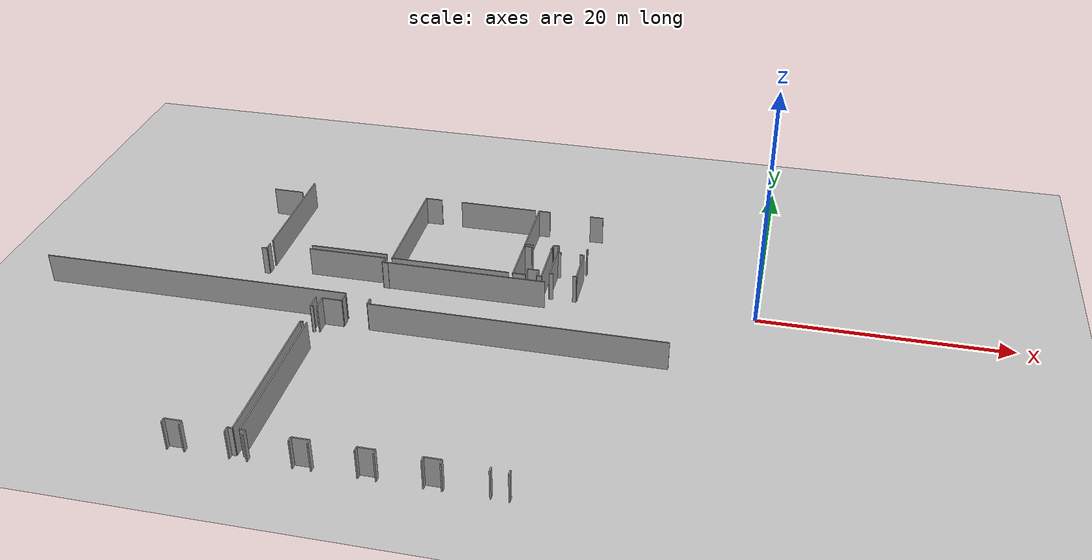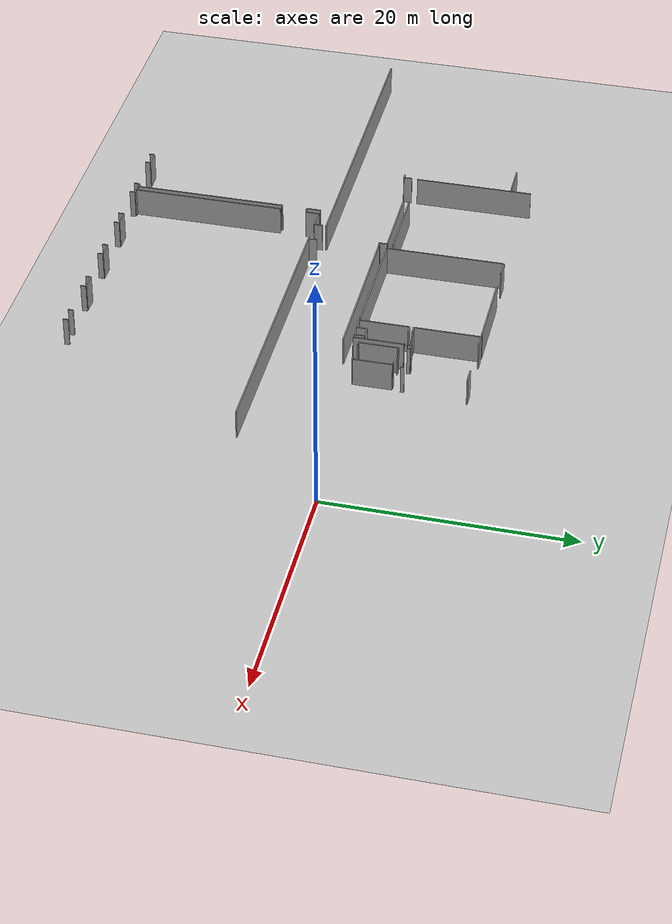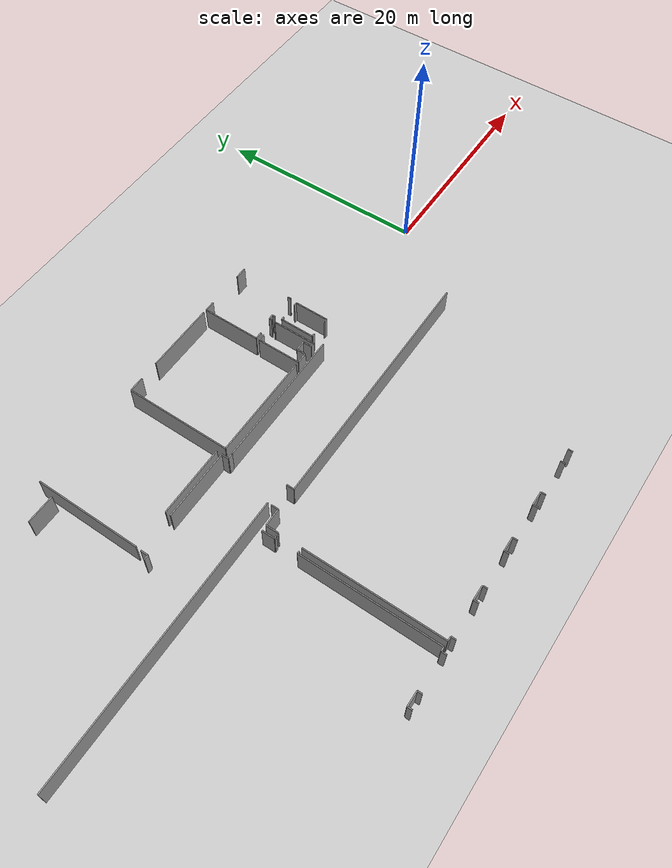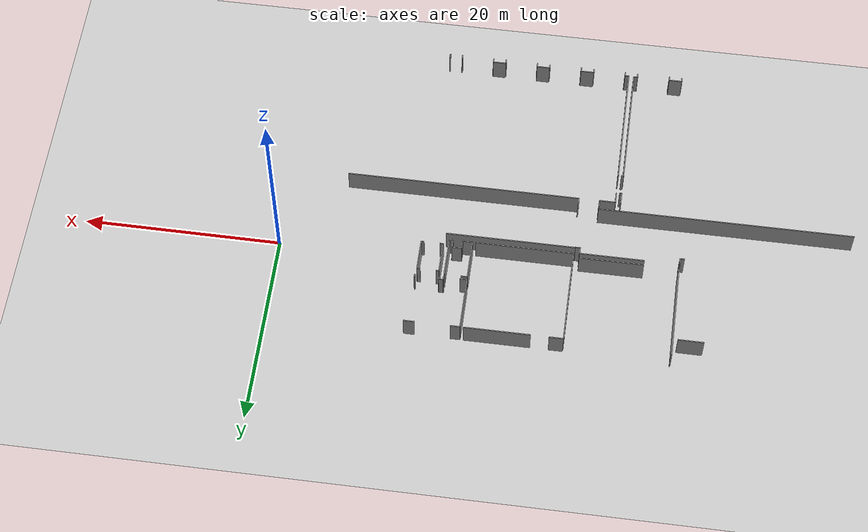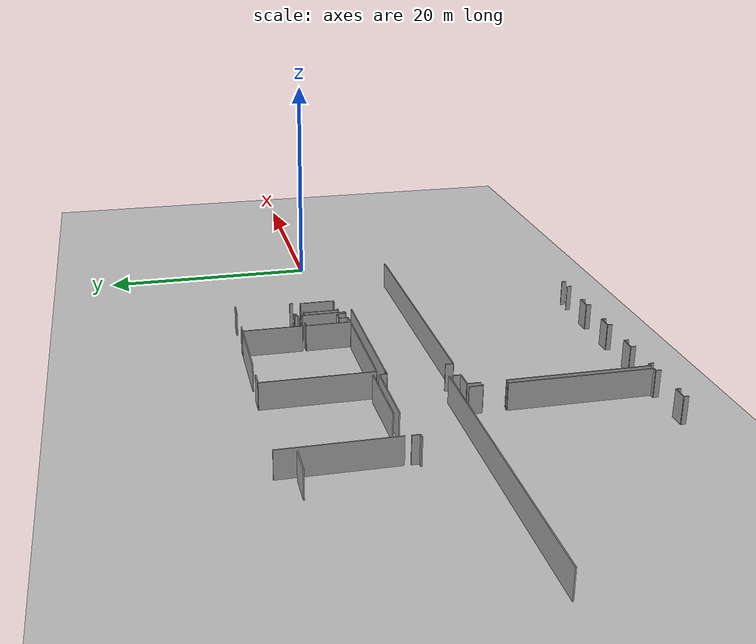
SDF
<sdf version="1.6">
 <world name="default">
  <model name="ground_plane">
   <static>1</static>
   <link name="link">
    <collision name="collision">
     <geometry><plane><normal>0 0 1</normal><size>100 100</size></plane></geometry>
     <surface><friction><ode><mu>100</mu><mu2>50</mu2></ode></friction></surface>
    </collision>
    <visual name="visual">
     <cast_shadows>0</cast_shadows>
     <geometry><plane><normal>0 0 1</normal><size>100 100</size></plane></geometry>
     <material>
      <script><uri>file://media/materials/scripts/gazebo.material</uri><name>Gazebo/Grey</name></script>
     </material>
    </visual>
   </link>
  </model>
  <model name="0510032197_A_40_1_105">
   <static>1</static>
   <link name="Wall_288">
    <collision name="Wall_288_Collision">
     <geometry><box><size>3.20733613798 0.1 2.5</size></box></geometry>
     <pose>1.60366806899 0 1.25 0 0 0</pose>
    </collision>
    <visual name="Wall_288_Visual">
     <pose>1.60366806899 0 1.25 0 0 0</pose>
     <geometry><box><size>3.20733613798 0.1 2.5</size></box></geometry>
     <material>
      <script><uri>file://media/materials/scripts/gazebo.material</uri><name>Gazebo/Grey</name></script>
      <ambient>1 1 1 1</ambient>
     </material>
    </visual>
    <pose>48.8543321598 -24.7133288425 0 0 0 1.57079632679</pose>
   </link>
   <link name="Wall_289">
    <collision name="Wall_289_Collision">
     <geometry><box><size>0.297665196558 0.1 2.5</size></box></geometry>
     <pose>0.148832598279 0 1.25 0 0 0</pose>
    </collision>
    <visual name="Wall_289_Visual">
     <pose>0.148832598279 0 1.25 0 0 0</pose>
     <geometry><box><size>0.297665196558 0.1 2.5</size></box></geometry>
     <material>
      <script><uri>file://media/materials/scripts/gazebo.material</uri><name>Gazebo/Grey</name></script>
      <ambient>1 1 1 1</ambient>
     </material>
    </visual>
    <pose>48.8543321598 -21.5059927045 0 0 0 0.0</pose>
   </link>
   <link name="Wall_290">
    <collision name="Wall_290_Collision">
     <geometry><box><size>0.335921910548 0.1 2.5</size></box></geometry>
     <pose>0.167960955274 0 1.25 0 0 0</pose>
    </collision>
    <visual name="Wall_290_Visual">
     <pose>0.167960955274 0 1.25 0 0 0</pose>
     <geometry><box><size>0.335921910548 0.1 2.5</size></box></geometry>
     <material>
      <script><uri>file://media/materials/scripts/gazebo.material</uri><name>Gazebo/Grey</name></script>
      <ambient>1 1 1 1</ambient>
     </material>
    </visual>
    <pose>50.7247168876 -21.5059927045 0 0 0 0.0</pose>
   </link>
   <link name="Wall_291">
    <collision name="Wall_291_Collision">
     <geometry><box><size>3.20682774311 0.1 2.5</size></box></geometry>
     <pose>1.60341387155 0 1.25 0 0 0</pose>
    </collision>
    <visual name="Wall_291_Visual">
     <pose>1.60341387155 0 1.25 0 0 0</pose>
     <geometry><box><size>3.20682774311 0.1 2.5</size></box></geometry>
     <material>
      <script><uri>file://media/materials/scripts/gazebo.material</uri><name>Gazebo/Grey</name></script>
      <ambient>1 1 1 1</ambient>
     </material>
    </visual>
    <pose>51.0606387982 -21.5059927045 0 0 0 -1.57079632679</pose>
   </link>
   <link name="Wall_292">
    <collision name="Wall_292_Collision">
     <geometry><box><size>0.296267110665 0.1 2.5</size></box></geometry>
     <pose>0.148133555332 0 1.25 0 0 0</pose>
    </collision>
    <visual name="Wall_292_Visual">
     <pose>0.148133555332 0 1.25 0 0 0</pose>
     <geometry><box><size>0.296267110665 0.1 2.5</size></box></geometry>
     <material>
      <script><uri>file://media/materials/scripts/gazebo.material</uri><name>Gazebo/Grey</name></script>
      <ambient>1 1 1 1</ambient>
     </material>
    </visual>
    <pose>51.0606387982 -24.7128204476 0 0 0 3.14159265359</pose>
   </link>
   <link name="Wall_293">
    <collision name="Wall_293_Collision">
     <geometry><box><size>0.30592703563 0.1 2.5</size></box></geometry>
     <pose>0.152963517815 0 1.25 0 0 0</pose>
    </collision>
    <visual name="Wall_293_Visual">
     <pose>0.152963517815 0 1.25 0 0 0</pose>
     <geometry><box><size>0.30592703563 0.1 2.5</size></box></geometry>
     <material>
      <script><uri>file://media/materials/scripts/gazebo.material</uri><name>Gazebo/Grey</name></script>
      <ambient>1 1 1 1</ambient>
     </material>
    </visual>
    <pose>49.160258773 -24.7128204476 0 0 0 -3.13993083543</pose>
   </link>
   <link name="Wall_294">
    <collision name="Wall_294_Collision">
     <geometry><box><size>5.43804573012 0.1 2.5</size></box></geometry>
     <pose>2.71902286506 0 1.25 0 0 0</pose>
    </collision>
    <visual name="Wall_294_Visual">
     <pose>2.71902286506 0 1.25 0 0 0</pose>
     <geometry><box><size>5.43804573012 0.1 2.5</size></box></geometry>
     <material>
      <script><uri>file://media/materials/scripts/gazebo.material</uri><name>Gazebo/Grey</name></script>
      <ambient>1 1 1 1</ambient>
     </material>
    </visual>
    <pose>45.9634718286 -20.8638899834 0 0 0 1.57079632679</pose>
   </link>
   <link name="Wall_295">
    <collision name="Wall_295_Collision">
     <geometry><box><size>0.963662476646 0.1 2.5</size></box></geometry>
     <pose>0.481831238323 0 1.25 0 0 0</pose>
    </collision>
    <visual name="Wall_295_Visual">
     <pose>0.481831238323 0 1.25 0 0 0</pose>
     <geometry><box><size>0.963662476646 0.1 2.5</size></box></geometry>
     <material>
      <script><uri>file://media/materials/scripts/gazebo.material</uri><name>Gazebo/Grey</name></script>
      <ambient>1 1 1 1</ambient>
     </material>
    </visual>
    <pose>45.9634718286 -15.4258442532 0 0 0 0.0</pose>
   </link>
   <link name="Wall_296">
    <collision name="Wall_296_Collision">
     <geometry><box><size>1.10906340955 0.1 2.5</size></box></geometry>
     <pose>0.554531704775 0 1.25 0 0 0</pose>
    </collision>
    <visual name="Wall_296_Visual">
     <pose>0.554531704775 0 1.25 0 0 0</pose>
     <geometry><box><size>1.10906340955 0.1 2.5</size></box></geometry>
     <material>
      <script><uri>file://media/materials/scripts/gazebo.material</uri><name>Gazebo/Grey</name></script>
      <ambient>1 1 1 1</ambient>
     </material>
    </visual>
    <pose>50.4772556845 -15.4258442532 0 0 0 0.0</pose>
   </link>
   <link name="Wall_300">
    <collision name="Wall_300_Collision">
     <geometry><box><size>0.286734706847 0.1 2.5</size></box></geometry>
     <pose>0.143367353423 0 1.25 0 0 0</pose>
    </collision>
    <visual name="Wall_300_Visual">
     <pose>0.143367353423 0 1.25 0 0 0</pose>
     <geometry><box><size>0.286734706847 0.1 2.5</size></box></geometry>
     <material>
      <script><uri>file://media/materials/scripts/gazebo.material</uri><name>Gazebo/Grey</name></script>
      <ambient>1 1 1 1</ambient>
     </material>
    </visual>
    <pose>51.1794760991 -20.5212318408 0 0 0 -1.57079632679</pose>
   </link>
   <link name="Wall_301">
    <collision name="Wall_301_Collision">
     <geometry><box><size>0.0167770307198 0.1 2.5</size></box></geometry>
     <pose>0.00838851535988 0 1.25 0 0 0</pose>
    </collision>
    <visual name="Wall_301_Visual">
     <pose>0.00838851535988 0 1.25 0 0 0</pose>
     <geometry><box><size>0.0167770307198 0.1 2.5</size></box></geometry>
     <material>
      <script><uri>file://media/materials/scripts/gazebo.material</uri><name>Gazebo/Grey</name></script>
      <ambient>1 1 1 1</ambient>
     </material>
    </visual>
    <pose>51.1794760991 -20.8079665476 0 0 0 -1.57079632679</pose>
   </link>
   <link name="Wall_302">
    <collision name="Wall_302_Collision">
     <geometry><box><size>0.27135576202 0.1 2.5</size></box></geometry>
     <pose>0.13567788101 0 1.25 0 0 0</pose>
    </collision>
    <visual name="Wall_302_Visual">
     <pose>0.13567788101 0 1.25 0 0 0</pose>
     <geometry><box><size>0.27135576202 0.1 2.5</size></box></geometry>
     <material>
      <script><uri>file://media/materials/scripts/gazebo.material</uri><name>Gazebo/Grey</name></script>
      <ambient>1 1 1 1</ambient>
     </material>
    </visual>
    <pose>48.7630752806 -20.8247435783 0 0 0 1.57079632679</pose>
   </link>
   <link name="Wall_303">
    <collision name="Wall_303_Collision">
     <geometry><box><size>0.450437855082 0.1 2.5</size></box></geometry>
     <pose>0.225218927541 0 1.25 0 0 0</pose>
    </collision>
    <visual name="Wall_303_Visual">
     <pose>0.225218927541 0 1.25 0 0 0</pose>
     <geometry><box><size>0.450437855082 0.1 2.5</size></box></geometry>
     <material>
      <script><uri>file://media/materials/scripts/gazebo.material</uri><name>Gazebo/Grey</name></script>
      <ambient>1 1 1 1</ambient>
     </material>
    </visual>
    <pose>48.7630752806 -20.5533878163 0 0 0 3.14159265359</pose>
   </link>
   <link name="Wall_304">
    <collision name="Wall_304_Collision">
     <geometry><box><size>0.30859568627 0.1 2.5</size></box></geometry>
     <pose>0.154297843135 0 1.25 0 0 0</pose>
    </collision>
    <visual name="Wall_304_Visual">
     <pose>0.154297843135 0 1.25 0 0 0</pose>
     <geometry><box><size>0.30859568627 0.1 2.5</size></box></geometry>
     <material>
      <script><uri>file://media/materials/scripts/gazebo.material</uri><name>Gazebo/Grey</name></script>
      <ambient>1 1 1 1</ambient>
     </material>
    </visual>
    <pose>48.3126374255 -20.5533878163 0 0 0 -1.57079632679</pose>
   </link>
   <link name="Wall_305">
    <collision name="Wall_305_Collision">
     <geometry><box><size>0.0540169549689 0.1 2.5</size></box></geometry>
     <pose>0.0270084774845 0 1.25 0 0 0</pose>
    </collision>
    <visual name="Wall_305_Visual">
     <pose>0.0270084774845 0 1.25 0 0 0</pose>
     <geometry><box><size>0.0540169549689 0.1 2.5</size></box></geometry>
     <material>
      <script><uri>file://media/materials/scripts/gazebo.material</uri><name>Gazebo/Grey</name></script>
      <ambient>1 1 1 1</ambient>
     </material>
    </visual>
    <pose>48.3126374255 -20.8619835026 0 0 0 3.14159265359</pose>
   </link>
   <link name="Wall_306">
    <collision name="Wall_306_Collision">
     <geometry><box><size>0.714678631792 0.1 2.5</size></box></geometry>
     <pose>0.357339315896 0 1.25 0 0 0</pose>
    </collision>
    <visual name="Wall_306_Visual">
     <pose>0.357339315896 0 1.25 0 0 0</pose>
     <geometry><box><size>0.714678631792 0.1 2.5</size></box></geometry>
     <material>
      <script><uri>file://media/materials/scripts/gazebo.material</uri><name>Gazebo/Grey</name></script>
      <ambient>1 1 1 1</ambient>
     </material>
    </visual>
    <pose>46.6781479175 -20.8619835026 0 0 0 -3.13892504477</pose>
   </link>
   <link name="Wall_307">
    <collision name="Wall_307_Collision">
     <geometry><box><size>4.10579697251 0.1 2.5</size></box></geometry>
     <pose>2.05289848625 0 1.25 0 0 0</pose>
    </collision>
    <visual name="Wall_307_Visual">
     <pose>2.05289848625 0 1.25 0 0 0</pose>
     <geometry><box><size>4.10579697251 0.1 2.5</size></box></geometry>
     <material>
      <script><uri>file://media/materials/scripts/gazebo.material</uri><name>Gazebo/Grey</name></script>
      <ambient>1 1 1 1</ambient>
     </material>
    </visual>
    <pose>45.9643615196 -25.2888318357 0 0 0 1.57079632679</pose>
   </link>
   <link name="Wall_308">
    <collision name="Wall_308_Collision">
     <geometry><box><size>0.646678275016 0.1 2.5</size></box></geometry>
     <pose>0.323339137508 0 1.25 0 0 0</pose>
    </collision>
    <visual name="Wall_308_Visual">
     <pose>0.323339137508 0 1.25 0 0 0</pose>
     <geometry><box><size>0.646678275016 0.1 2.5</size></box></geometry>
     <material>
      <script><uri>file://media/materials/scripts/gazebo.material</uri><name>Gazebo/Grey</name></script>
      <ambient>1 1 1 1</ambient>
     </material>
    </visual>
    <pose>45.9643615196 -21.1830348632 0 0 0 0.0</pose>
   </link>
   <link name="Wall_309">
    <collision name="Wall_309_Collision">
     <geometry><box><size>0.104348047128 0.1 2.5</size></box></geometry>
     <pose>0.0521740235641 0 1.25 0 0 0</pose>
    </collision>
    <visual name="Wall_309_Visual">
     <pose>0.0521740235641 0 1.25 0 0 0</pose>
     <geometry><box><size>0.104348047128 0.1 2.5</size></box></geometry>
     <material>
      <script><uri>file://media/materials/scripts/gazebo.material</uri><name>Gazebo/Grey</name></script>
      <ambient>1 1 1 1</ambient>
     </material>
    </visual>
    <pose>48.1833780297 -21.1830348632 0 0 0 0.0</pose>
   </link>
   <link name="Wall_310">
    <collision name="Wall_310_Collision">
     <geometry><box><size>4.07478488542 0.1 2.5</size></box></geometry>
     <pose>2.03739244271 0 1.25 0 0 0</pose>
    </collision>
    <visual name="Wall_310_Visual">
     <pose>2.03739244271 0 1.25 0 0 0</pose>
     <geometry><box><size>4.07478488542 0.1 2.5</size></box></geometry>
     <material>
      <script><uri>file://media/materials/scripts/gazebo.material</uri><name>Gazebo/Grey</name></script>
      <ambient>1 1 1 1</ambient>
     </material>
    </visual>
    <pose>48.2877260768 -21.1830348632 0 0 0 -1.57079632679</pose>
   </link>
   <link name="Wall_311">
    <collision name="Wall_311_Collision">
     <geometry><box><size>0.369730169423 0.1 2.5</size></box></geometry>
     <pose>0.184865084711 0 1.25 0 0 0</pose>
    </collision>
    <visual name="Wall_311_Visual">
     <pose>0.184865084711 0 1.25 0 0 0</pose>
     <geometry><box><size>0.369730169423 0.1 2.5</size></box></geometry>
     <material>
      <script><uri>file://media/materials/scripts/gazebo.material</uri><name>Gazebo/Grey</name></script>
      <ambient>1 1 1 1</ambient>
     </material>
    </visual>
    <pose>48.2877260768 -25.2578197486 0 0 0 3.14159265359</pose>
   </link>
   <link name="Wall_312">
    <collision name="Wall_312_Collision">
     <geometry><box><size>0.814448582214 0.1 2.5</size></box></geometry>
     <pose>0.407224291107 0 1.25 0 0 0</pose>
    </collision>
    <visual name="Wall_312_Visual">
     <pose>0.407224291107 0 1.25 0 0 0</pose>
     <geometry><box><size>0.814448582214 0.1 2.5</size></box></geometry>
     <material>
      <script><uri>file://media/materials/scripts/gazebo.material</uri><name>Gazebo/Grey</name></script>
      <ambient>1 1 1 1</ambient>
     </material>
    </visual>
    <pose>47.9179959074 -25.2578197486 0 0 0 1.57079632679</pose>
   </link>
   <link name="Wall_313">
    <collision name="Wall_313_Collision">
     <geometry><box><size>0.947393840796 0.1 2.5</size></box></geometry>
     <pose>0.473696920398 0 1.25 0 0 0</pose>
    </collision>
    <visual name="Wall_313_Visual">
     <pose>0.473696920398 0 1.25 0 0 0</pose>
     <geometry><box><size>0.947393840796 0.1 2.5</size></box></geometry>
     <material>
      <script><uri>file://media/materials/scripts/gazebo.material</uri><name>Gazebo/Grey</name></script>
      <ambient>1 1 1 1</ambient>
     </material>
    </visual>
    <pose>47.9179959074 -24.4433711664 0 0 0 3.14159265359</pose>
   </link>
   <link name="Wall_314">
    <collision name="Wall_314_Collision">
     <geometry><box><size>0.835165673178 0.1 2.5</size></box></geometry>
     <pose>0.417582836589 0 1.25 0 0 0</pose>
    </collision>
    <visual name="Wall_314_Visual">
     <pose>0.417582836589 0 1.25 0 0 0</pose>
     <geometry><box><size>0.835165673178 0.1 2.5</size></box></geometry>
     <material>
      <script><uri>file://media/materials/scripts/gazebo.material</uri><name>Gazebo/Grey</name></script>
      <ambient>1 1 1 1</ambient>
     </material>
    </visual>
    <pose>46.9706020666 -24.4433711664 0 0 0 -1.57079632679</pose>
   </link>
   <link name="Wall_315">
    <collision name="Wall_315_Collision">
     <geometry><box><size>1.00629321047 0.1 2.5</size></box></geometry>
     <pose>0.503146605235 0 1.25 0 0 0</pose>
    </collision>
    <visual name="Wall_315_Visual">
     <pose>0.503146605235 0 1.25 0 0 0</pose>
     <geometry><box><size>1.00629321047 0.1 2.5</size></box></geometry>
     <material>
      <script><uri>file://media/materials/scripts/gazebo.material</uri><name>Gazebo/Grey</name></script>
      <ambient>1 1 1 1</ambient>
     </material>
    </visual>
    <pose>46.9706020666 -25.2785368396 0 0 0 -3.13136186239</pose>
   </link>
   <link name="Wall_316">
    <collision name="Wall_316_Collision">
     <geometry><box><size>9.85078610557 0.1 2.5</size></box></geometry>
     <pose>4.92539305278 0 1.25 0 0 0</pose>
    </collision>
    <visual name="Wall_316_Visual">
     <pose>4.92539305278 0 1.25 0 0 0</pose>
     <geometry><box><size>9.85078610557 0.1 2.5</size></box></geometry>
     <material>
      <script><uri>file://media/materials/scripts/gazebo.material</uri><name>Gazebo/Grey</name></script>
      <ambient>1 1 1 1</ambient>
     </material>
    </visual>
    <pose>35.7936679419 -25.2669708563 0 0 0 1.57079632679</pose>
   </link>
   <link name="Wall_317">
    <collision name="Wall_317_Collision">
     <geometry><box><size>1.42236174837 0.1 2.5</size></box></geometry>
     <pose>0.711180874185 0 1.25 0 0 0</pose>
    </collision>
    <visual name="Wall_317_Visual">
     <pose>0.711180874185 0 1.25 0 0 0</pose>
     <geometry><box><size>1.42236174837 0.1 2.5</size></box></geometry>
     <material>
      <script><uri>file://media/materials/scripts/gazebo.material</uri><name>Gazebo/Grey</name></script>
      <ambient>1 1 1 1</ambient>
     </material>
    </visual>
    <pose>35.7936679419 -15.4161847507 0 0 0 0.0</pose>
   </link>
   <link name="Wall_318">
    <collision name="Wall_318_Collision">
     <geometry><box><size>6.59705893568 0.1 2.5</size></box></geometry>
     <pose>3.29852946784 0 1.25 0 0 0</pose>
    </collision>
    <visual name="Wall_318_Visual">
     <pose>3.29852946784 0 1.25 0 0 0</pose>
     <geometry><box><size>6.59705893568 0.1 2.5</size></box></geometry>
     <material>
      <script><uri>file://media/materials/scripts/gazebo.material</uri><name>Gazebo/Grey</name></script>
      <ambient>1 1 1 1</ambient>
     </material>
    </visual>
    <pose>39.0257883298 -15.4161847507 0 0 0 0.0</pose>
   </link>
   <link name="Wall_320">
    <collision name="Wall_320_Collision">
     <geometry><box><size>9.8291901911 0.1 2.5</size></box></geometry>
     <pose>4.91459509555 0 1.25 0 0 0</pose>
    </collision>
    <visual name="Wall_320_Visual">
     <pose>4.91459509555 0 1.25 0 0 0</pose>
     <geometry><box><size>9.8291901911 0.1 2.5</size></box></geometry>
     <material>
      <script><uri>file://media/materials/scripts/gazebo.material</uri><name>Gazebo/Grey</name></script>
      <ambient>1 1 1 1</ambient>
     </material>
    </visual>
    <pose>45.6228472655 -25.2815872088 0 0 0 3.14010561777</pose>
   </link>
   <link name="Wall_321">
    <collision name="Wall_321_Collision">
     <geometry><box><size>9.83299228511 0.1 2.5</size></box></geometry>
     <pose>4.91649614255 0 1.25 0 0 0</pose>
    </collision>
    <visual name="Wall_321_Visual">
     <pose>4.91649614255 0 1.25 0 0 0</pose>
     <geometry><box><size>9.83299228511 0.1 2.5</size></box></geometry>
     <material>
      <script><uri>file://media/materials/scripts/gazebo.material</uri><name>Gazebo/Grey</name></script>
      <ambient>1 1 1 1</ambient>
     </material>
    </visual>
    <pose>25.2207069231 -24.8537729254 0 0 0 1.57079632679</pose>
   </link>
   <link name="Wall_325">
    <collision name="Wall_325_Collision">
     <geometry><box><size>6.49121407537 0.1 2.5</size></box></geometry>
     <pose>3.24560703768 0 1.25 0 0 0</pose>
    </collision>
    <visual name="Wall_325_Visual">
     <pose>3.24560703768 0 1.25 0 0 0</pose>
     <geometry><box><size>6.49121407537 0.1 2.5</size></box></geometry>
     <material>
      <script><uri>file://media/materials/scripts/gazebo.material</uri><name>Gazebo/Grey</name></script>
      <ambient>1 1 1 1</ambient>
     </material>
    </visual>
    <pose>35.2020234116 -24.8345810191 0 0 0 -3.13863605193</pose>
   </link>
   <link name="Wall_341">
    <collision name="Wall_341_Collision">
     <geometry><box><size>1.1810012837 0.1 2.5</size></box></geometry>
     <pose>0.590500641849 0 1.25 0 0 0</pose>
    </collision>
    <visual name="Wall_341_Visual">
     <pose>0.590500641849 0 1.25 0 0 0</pose>
     <geometry><box><size>1.1810012837 0.1 2.5</size></box></geometry>
     <material>
      <script><uri>file://media/materials/scripts/gazebo.material</uri><name>Gazebo/Grey</name></script>
      <ambient>1 1 1 1</ambient>
     </material>
    </visual>
    <pose>31.6484703669 -31.8834758957 0 0 0 -1.57079632679</pose>
   </link>
   <link name="Wall_342">
    <collision name="Wall_342_Collision">
     <geometry><box><size>0.225346026259 0.1 2.5</size></box></geometry>
     <pose>0.112673013129 0 1.25 0 0 0</pose>
    </collision>
    <visual name="Wall_342_Visual">
     <pose>0.112673013129 0 1.25 0 0 0</pose>
     <geometry><box><size>0.225346026259 0.1 2.5</size></box></geometry>
     <material>
      <script><uri>file://media/materials/scripts/gazebo.material</uri><name>Gazebo/Grey</name></script>
      <ambient>1 1 1 1</ambient>
     </material>
    </visual>
    <pose>31.6484703669 -33.0644771794 0 0 0 0.0</pose>
   </link>
   <link name="Wall_343">
    <collision name="Wall_343_Collision">
     <geometry><box><size>0.225346026259 0.1 2.5</size></box></geometry>
     <pose>0.112673013129 0 1.25 0 0 0</pose>
    </collision>
    <visual name="Wall_343_Visual">
     <pose>0.112673013129 0 1.25 0 0 0</pose>
     <geometry><box><size>0.225346026259 0.1 2.5</size></box></geometry>
     <material>
      <script><uri>file://media/materials/scripts/gazebo.material</uri><name>Gazebo/Grey</name></script>
      <ambient>1 1 1 1</ambient>
     </material>
    </visual>
    <pose>31.8738163932 -35.2010066218 0 0 0 3.14159265359</pose>
   </link>
   <link name="Wall_344">
    <collision name="Wall_344_Collision">
     <geometry><box><size>12.692967628 0.1 2.5</size></box></geometry>
     <pose>6.34648381398 0 1.25 0 0 0</pose>
    </collision>
    <visual name="Wall_344_Visual">
     <pose>6.34648381398 0 1.25 0 0 0</pose>
     <geometry><box><size>12.692967628 0.1 2.5</size></box></geometry>
     <material>
      <script><uri>file://media/materials/scripts/gazebo.material</uri><name>Gazebo/Grey</name></script>
      <ambient>1 1 1 1</ambient>
     </material>
    </visual>
    <pose>31.6484703669 -35.2010066218 0 0 0 -1.57079632679</pose>
   </link>
   <link name="Wall_345">
    <collision name="Wall_345_Collision">
     <geometry><box><size>0.382185843745 0.1 2.5</size></box></geometry>
     <pose>0.191092921872 0 1.25 0 0 0</pose>
    </collision>
    <visual name="Wall_345_Visual">
     <pose>0.191092921872 0 1.25 0 0 0</pose>
     <geometry><box><size>0.382185843745 0.1 2.5</size></box></geometry>
     <material>
      <script><uri>file://media/materials/scripts/gazebo.material</uri><name>Gazebo/Grey</name></script>
      <ambient>1 1 1 1</ambient>
     </material>
    </visual>
    <pose>31.6484703669 -47.8939742498 0 0 0 3.14159265359</pose>
   </link>
   <link name="Wall_346">
    <collision name="Wall_346_Collision">
     <geometry><box><size>0.46416451658 0.1 2.5</size></box></geometry>
     <pose>0.23208225829 0 1.25 0 0 0</pose>
    </collision>
    <visual name="Wall_346_Visual">
     <pose>0.23208225829 0 1.25 0 0 0</pose>
     <geometry><box><size>0.46416451658 0.1 2.5</size></box></geometry>
     <material>
      <script><uri>file://media/materials/scripts/gazebo.material</uri><name>Gazebo/Grey</name></script>
      <ambient>1 1 1 1</ambient>
     </material>
    </visual>
    <pose>31.2662845232 -47.8939742498 0 0 0 -1.57079632679</pose>
   </link>
   <link name="Wall_347">
    <collision name="Wall_347_Collision">
     <geometry><box><size>0.429847862835 0.1 2.5</size></box></geometry>
     <pose>0.214923931418 0 1.25 0 0 0</pose>
    </collision>
    <visual name="Wall_347_Visual">
     <pose>0.214923931418 0 1.25 0 0 0</pose>
     <geometry><box><size>0.429847862835 0.1 2.5</size></box></geometry>
     <material>
      <script><uri>file://media/materials/scripts/gazebo.material</uri><name>Gazebo/Grey</name></script>
      <ambient>1 1 1 1</ambient>
     </material>
    </visual>
    <pose>27.9139287485 -48.3581387664 0 0 0 1.57079632679</pose>
   </link>
   <link name="Wall_348">
    <collision name="Wall_348_Collision">
     <geometry><box><size>1.30454123718 0.1 2.5</size></box></geometry>
     <pose>0.652270618589 0 1.25 0 0 0</pose>
    </collision>
    <visual name="Wall_348_Visual">
     <pose>0.652270618589 0 1.25 0 0 0</pose>
     <geometry><box><size>1.30454123718 0.1 2.5</size></box></geometry>
     <material>
      <script><uri>file://media/materials/scripts/gazebo.material</uri><name>Gazebo/Grey</name></script>
      <ambient>1 1 1 1</ambient>
     </material>
    </visual>
    <pose>27.9139287485 -47.9282909035 0 0 0 3.14159265359</pose>
   </link>
   <link name="Wall_349">
    <collision name="Wall_349_Collision">
     <geometry><box><size>0.410910153917 0.1 2.5</size></box></geometry>
     <pose>0.205455076958 0 1.25 0 0 0</pose>
    </collision>
    <visual name="Wall_349_Visual">
     <pose>0.205455076958 0 1.25 0 0 0</pose>
     <geometry><box><size>0.410910153917 0.1 2.5</size></box></geometry>
     <material>
      <script><uri>file://media/materials/scripts/gazebo.material</uri><name>Gazebo/Grey</name></script>
      <ambient>1 1 1 1</ambient>
     </material>
    </visual>
    <pose>26.6093875113 -47.9282909035 0 0 0 -1.57079632679</pose>
   </link>
   <link name="Wall_364">
    <collision name="Wall_364_Collision">
     <geometry><box><size>12.6774615844 0.1 2.5</size></box></geometry>
     <pose>6.33873079221 0 1.25 0 0 0</pose>
    </collision>
    <visual name="Wall_364_Visual">
     <pose>6.33873079221 0 1.25 0 0 0</pose>
     <geometry><box><size>12.6774615844 0.1 2.5</size></box></geometry>
     <material>
      <script><uri>file://media/materials/scripts/gazebo.material</uri><name>Gazebo/Grey</name></script>
      <ambient>1 1 1 1</ambient>
     </material>
    </visual>
    <pose>32.1824120795 -47.9038879498 0 0 0 1.57079632679</pose>
   </link>
   <link name="Wall_365">
    <collision name="Wall_365_Collision">
     <geometry><box><size>1.15481894788 0.1 2.5</size></box></geometry>
     <pose>0.577409473938 0 1.25 0 0 0</pose>
    </collision>
    <visual name="Wall_365_Visual">
     <pose>0.577409473938 0 1.25 0 0 0</pose>
     <geometry><box><size>1.15481894788 0.1 2.5</size></box></geometry>
     <material>
      <script><uri>file://media/materials/scripts/gazebo.material</uri><name>Gazebo/Grey</name></script>
      <ambient>1 1 1 1</ambient>
     </material>
    </visual>
    <pose>32.1824120795 -33.049352432 0 0 0 1.57079632679</pose>
   </link>
   <link name="Wall_366">
    <collision name="Wall_366_Collision">
     <geometry><box><size>0.00317746793935 0.1 2.5</size></box></geometry>
     <pose>0.00158873396968 0 1.25 0 0 0</pose>
    </collision>
    <visual name="Wall_366_Visual">
     <pose>0.00158873396968 0 1.25 0 0 0</pose>
     <geometry><box><size>0.00317746793935 0.1 2.5</size></box></geometry>
     <material>
      <script><uri>file://media/materials/scripts/gazebo.material</uri><name>Gazebo/Grey</name></script>
      <ambient>1 1 1 1</ambient>
     </material>
    </visual>
    <pose>32.1824120795 -31.8945334842 0 0 0 1.57079632679</pose>
   </link>
   <link name="Wall_367">
    <collision name="Wall_367_Collision">
     <geometry><box><size>1.61720408241 0.1 2.5</size></box></geometry>
     <pose>0.808602041205 0 1.25 0 0 0</pose>
    </collision>
    <visual name="Wall_367_Visual">
     <pose>0.808602041205 0 1.25 0 0 0</pose>
     <geometry><box><size>1.61720408241 0.1 2.5</size></box></geometry>
     <material>
      <script><uri>file://media/materials/scripts/gazebo.material</uri><name>Gazebo/Grey</name></script>
      <ambient>1 1 1 1</ambient>
     </material>
    </visual>
    <pose>32.1824120795 -31.8913560162 0 0 0 0.0</pose>
   </link>
   <link name="Wall_368">
    <collision name="Wall_368_Collision">
     <geometry><box><size>0.69624677487 0.1 2.5</size></box></geometry>
     <pose>0.348123387435 0 1.25 0 0 0</pose>
    </collision>
    <visual name="Wall_368_Visual">
     <pose>0.348123387435 0 1.25 0 0 0</pose>
     <geometry><box><size>0.69624677487 0.1 2.5</size></box></geometry>
     <material>
      <script><uri>file://media/materials/scripts/gazebo.material</uri><name>Gazebo/Grey</name></script>
      <ambient>1 1 1 1</ambient>
     </material>
    </visual>
    <pose>33.7996161619 -31.8913560162 0 0 0 1.57079632679</pose>
   </link>
   <link name="Wall_369">
    <collision name="Wall_369_Collision">
     <geometry><box><size>0.689764740274 0.1 2.5</size></box></geometry>
     <pose>0.344882370137 0 1.25 0 0 0</pose>
    </collision>
    <visual name="Wall_369_Visual">
     <pose>0.344882370137 0 1.25 0 0 0</pose>
     <geometry><box><size>0.689764740274 0.1 2.5</size></box></geometry>
     <material>
      <script><uri>file://media/materials/scripts/gazebo.material</uri><name>Gazebo/Grey</name></script>
      <ambient>1 1 1 1</ambient>
     </material>
    </visual>
    <pose>35.8936946326 -31.1951092413 0 0 0 -1.57079632679</pose>
   </link>
   <link name="Wall_370">
    <collision name="Wall_370_Collision">
     <geometry><box><size>23.6558675123 0.1 2.5</size></box></geometry>
     <pose>11.8279337561 0 1.25 0 0 0</pose>
    </collision>
    <visual name="Wall_370_Visual">
     <pose>11.8279337561 0 1.25 0 0 0</pose>
     <geometry><box><size>23.6558675123 0.1 2.5</size></box></geometry>
     <material>
      <script><uri>file://media/materials/scripts/gazebo.material</uri><name>Gazebo/Grey</name></script>
      <ambient>1 1 1 1</ambient>
     </material>
    </visual>
    <pose>35.8936946326 -31.8848739816 0 0 0 0.0</pose>
   </link>
   <link name="Wall_381">
    <collision name="Wall_381_Collision">
     <geometry><box><size>0.436456996149 0.1 2.5</size></box></geometry>
     <pose>0.218228498074 0 1.25 0 0 0</pose>
    </collision>
    <visual name="Wall_381_Visual">
     <pose>0.218228498074 0 1.25 0 0 0</pose>
     <geometry><box><size>0.436456996149 0.1 2.5</size></box></geometry>
     <material>
      <script><uri>file://media/materials/scripts/gazebo.material</uri><name>Gazebo/Grey</name></script>
      <ambient>1 1 1 1</ambient>
     </material>
    </visual>
    <pose>51.1928214644 -48.3599181484 0 0 0 1.57079632679</pose>
   </link>
   <link name="Wall_383">
    <collision name="Wall_383_Collision">
     <geometry><box><size>0.420442557735 0.1 2.5</size></box></geometry>
     <pose>0.210221278867 0 1.25 0 0 0</pose>
    </collision>
    <visual name="Wall_383_Visual">
     <pose>0.210221278867 0 1.25 0 0 0</pose>
     <geometry><box><size>0.420442557735 0.1 2.5</size></box></geometry>
     <material>
      <script><uri>file://media/materials/scripts/gazebo.material</uri><name>Gazebo/Grey</name></script>
      <ambient>1 1 1 1</ambient>
     </material>
    </visual>
    <pose>49.8788749222 -47.9234611523 0 0 0 -1.57079632679</pose>
   </link>
   <link name="Wall_384">
    <collision name="Wall_384_Collision">
     <geometry><box><size>0.442049339722 0.1 2.5</size></box></geometry>
     <pose>0.221024669861 0 1.25 0 0 0</pose>
    </collision>
    <visual name="Wall_384_Visual">
     <pose>0.221024669861 0 1.25 0 0 0</pose>
     <geometry><box><size>0.442049339722 0.1 2.5</size></box></geometry>
     <material>
      <script><uri>file://media/materials/scripts/gazebo.material</uri><name>Gazebo/Grey</name></script>
      <ambient>1 1 1 1</ambient>
     </material>
    </visual>
    <pose>46.5385935256 -48.34390371 0 0 0 1.57079632679</pose>
   </link>
   <link name="Wall_385">
    <collision name="Wall_385_Collision">
     <geometry><box><size>1.31420073971 0.1 2.5</size></box></geometry>
     <pose>0.657100369857 0 1.25 0 0 0</pose>
    </collision>
    <visual name="Wall_385_Visual">
     <pose>0.657100369857 0 1.25 0 0 0</pose>
     <geometry><box><size>1.31420073971 0.1 2.5</size></box></geometry>
     <material>
      <script><uri>file://media/materials/scripts/gazebo.material</uri><name>Gazebo/Grey</name></script>
      <ambient>1 1 1 1</ambient>
     </material>
    </visual>
    <pose>46.5385935256 -47.9018543703 0 0 0 3.14159265359</pose>
   </link>
   <link name="Wall_386">
    <collision name="Wall_386_Collision">
     <geometry><box><size>0.449039769189 0.1 2.5</size></box></geometry>
     <pose>0.224519884594 0 1.25 0 0 0</pose>
    </collision>
    <visual name="Wall_386_Visual">
     <pose>0.224519884594 0 1.25 0 0 0</pose>
     <geometry><box><size>0.449039769189 0.1 2.5</size></box></geometry>
     <material>
      <script><uri>file://media/materials/scripts/gazebo.material</uri><name>Gazebo/Grey</name></script>
      <ambient>1 1 1 1</ambient>
     </material>
    </visual>
    <pose>45.2243927859 -47.9018543703 0 0 0 -1.57079632679</pose>
   </link>
   <link name="Wall_387">
    <collision name="Wall_387_Collision">
     <geometry><box><size>0.446624893555 0.1 2.5</size></box></geometry>
     <pose>0.223312446777 0 1.25 0 0 0</pose>
    </collision>
    <visual name="Wall_387_Visual">
     <pose>0.223312446777 0 1.25 0 0 0</pose>
     <geometry><box><size>0.446624893555 0.1 2.5</size></box></geometry>
     <material>
      <script><uri>file://media/materials/scripts/gazebo.material</uri><name>Gazebo/Grey</name></script>
      <ambient>1 1 1 1</ambient>
     </material>
    </visual>
    <pose>41.8909747201 -48.3508941395 0 0 0 1.57079632679</pose>
   </link>
   <link name="Wall_388">
    <collision name="Wall_388_Collision">
     <geometry><box><size>1.31864919483 0.1 2.5</size></box></geometry>
     <pose>0.659324597415 0 1.25 0 0 0</pose>
    </collision>
    <visual name="Wall_388_Visual">
     <pose>0.659324597415 0 1.25 0 0 0</pose>
     <geometry><box><size>1.31864919483 0.1 2.5</size></box></geometry>
     <material>
      <script><uri>file://media/materials/scripts/gazebo.material</uri><name>Gazebo/Grey</name></script>
      <ambient>1 1 1 1</ambient>
     </material>
    </visual>
    <pose>41.8909747201 -47.9042692459 0 0 0 3.14159265359</pose>
   </link>
   <link name="Wall_389">
    <collision name="Wall_389_Collision">
     <geometry><box><size>0.437092489737 0.1 2.5</size></box></geometry>
     <pose>0.218546244868 0 1.25 0 0 0</pose>
    </collision>
    <visual name="Wall_389_Visual">
     <pose>0.218546244868 0 1.25 0 0 0</pose>
     <geometry><box><size>0.437092489737 0.1 2.5</size></box></geometry>
     <material>
      <script><uri>file://media/materials/scripts/gazebo.material</uri><name>Gazebo/Grey</name></script>
      <ambient>1 1 1 1</ambient>
     </material>
    </visual>
    <pose>40.5723255252 -47.9042692459 0 0 0 -1.57079632679</pose>
   </link>
   <link name="Wall_390">
    <collision name="Wall_390_Collision">
     <geometry><box><size>0.433533725645 0.1 2.5</size></box></geometry>
     <pose>0.216766862822 0 1.25 0 0 0</pose>
    </collision>
    <visual name="Wall_390_Visual">
     <pose>0.216766862822 0 1.25 0 0 0</pose>
     <geometry><box><size>0.433533725645 0.1 2.5</size></box></geometry>
     <material>
      <script><uri>file://media/materials/scripts/gazebo.material</uri><name>Gazebo/Grey</name></script>
      <ambient>1 1 1 1</ambient>
     </material>
    </visual>
    <pose>37.2339506094 -48.3413617357 0 0 0 1.57079632679</pose>
   </link>
   <link name="Wall_391">
    <collision name="Wall_391_Collision">
     <geometry><box><size>1.34152696399 0.1 2.5</size></box></geometry>
     <pose>0.670763481996 0 1.25 0 0 0</pose>
    </collision>
    <visual name="Wall_391_Visual">
     <pose>0.670763481996 0 1.25 0 0 0</pose>
     <geometry><box><size>1.34152696399 0.1 2.5</size></box></geometry>
     <material>
      <script><uri>file://media/materials/scripts/gazebo.material</uri><name>Gazebo/Grey</name></script>
      <ambient>1 1 1 1</ambient>
     </material>
    </visual>
    <pose>37.2339506094 -47.90782801 0 0 0 3.14159265359</pose>
   </link>
   <link name="Wall_392">
    <collision name="Wall_392_Collision">
     <geometry><box><size>0.453488224304 0.1 2.5</size></box></geometry>
     <pose>0.226744112152 0 1.25 0 0 0</pose>
    </collision>
    <visual name="Wall_392_Visual">
     <pose>0.226744112152 0 1.25 0 0 0</pose>
     <geometry><box><size>0.453488224304 0.1 2.5</size></box></geometry>
     <material>
      <script><uri>file://media/materials/scripts/gazebo.material</uri><name>Gazebo/Grey</name></script>
      <ambient>1 1 1 1</ambient>
     </material>
    </visual>
    <pose>35.8924236454 -47.90782801 0 0 0 -1.57079632679</pose>
   </link>
   <link name="Wall_393">
    <collision name="Wall_393_Collision">
     <geometry><box><size>0.437855082042 0.1 2.5</size></box></geometry>
     <pose>0.218927541021 0 1.25 0 0 0</pose>
    </collision>
    <visual name="Wall_393_Visual">
     <pose>0.218927541021 0 1.25 0 0 0</pose>
     <geometry><box><size>0.437855082042 0.1 2.5</size></box></geometry>
     <material>
      <script><uri>file://media/materials/scripts/gazebo.material</uri><name>Gazebo/Grey</name></script>
      <ambient>1 1 1 1</ambient>
     </material>
    </visual>
    <pose>32.577307795 -48.3613162343 0 0 0 1.57079632679</pose>
   </link>
   <link name="Wall_394">
    <collision name="Wall_394_Collision">
     <geometry><box><size>0.395380495698 0.1 2.5</size></box></geometry>
     <pose>0.197690247849 0 1.25 0 0 0</pose>
    </collision>
    <visual name="Wall_394_Visual">
     <pose>0.197690247849 0 1.25 0 0 0</pose>
     <geometry><box><size>0.395380495698 0.1 2.5</size></box></geometry>
     <material>
      <script><uri>file://media/materials/scripts/gazebo.material</uri><name>Gazebo/Grey</name></script>
      <ambient>1 1 1 1</ambient>
     </material>
    </visual>
    <pose>32.577307795 -47.9234611523 0 0 0 3.09206768642</pose>
   </link>
   <link name="Wall_404">
    <collision name="Wall_404_Collision">
     <geometry><box><size>0.451327546105 0.1 2.5</size></box></geometry>
     <pose>0.225663773053 0 1.25 0 0 0</pose>
    </collision>
    <visual name="Wall_404_Visual">
     <pose>0.225663773053 0 1.25 0 0 0</pose>
     <geometry><box><size>0.451327546105 0.1 2.5</size></box></geometry>
     <material>
      <script><uri>file://media/materials/scripts/gazebo.material</uri><name>Gazebo/Grey</name></script>
      <ambient>1 1 1 1</ambient>
     </material>
    </visual>
    <pose>24.7362066117 -26.0337574194 0 0 0 0.0</pose>
   </link>
   <link name="Wall_405">
    <collision name="Wall_405_Collision">
     <geometry><box><size>0.686078877464 0.1 2.5</size></box></geometry>
     <pose>0.343039438732 0 1.25 0 0 0</pose>
    </collision>
    <visual name="Wall_405_Visual">
     <pose>0.343039438732 0 1.25 0 0 0</pose>
     <geometry><box><size>0.686078877464 0.1 2.5</size></box></geometry>
     <material>
      <script><uri>file://media/materials/scripts/gazebo.material</uri><name>Gazebo/Grey</name></script>
      <ambient>1 1 1 1</ambient>
     </material>
    </visual>
    <pose>25.1875341578 -26.0337574194 0 0 0 1.57079632679</pose>
   </link>
   <link name="Wall_406">
    <collision name="Wall_406_Collision">
     <geometry><box><size>6.50198909493 0.1 2.5</size></box></geometry>
     <pose>3.25099454747 0 1.25 0 0 0</pose>
    </collision>
    <visual name="Wall_406_Visual">
     <pose>3.25099454747 0 1.25 0 0 0</pose>
     <geometry><box><size>6.50198909493 0.1 2.5</size></box></geometry>
     <material>
      <script><uri>file://media/materials/scripts/gazebo.material</uri><name>Gazebo/Grey</name></script>
      <ambient>1 1 1 1</ambient>
     </material>
    </visual>
    <pose>28.6915187026 -25.3476785419 0 0 0 0.0</pose>
   </link>
   <link name="Wall_407">
    <collision name="Wall_407_Collision">
     <geometry><box><size>0.659388146774 0.1 2.5</size></box></geometry>
     <pose>0.329694073387 0 1.25 0 0 0</pose>
    </collision>
    <visual name="Wall_407_Visual">
     <pose>0.329694073387 0 1.25 0 0 0</pose>
     <geometry><box><size>0.659388146774 0.1 2.5</size></box></geometry>
     <material>
      <script><uri>file://media/materials/scripts/gazebo.material</uri><name>Gazebo/Grey</name></script>
      <ambient>1 1 1 1</ambient>
     </material>
    </visual>
    <pose>35.1935077975 -25.3476785419 0 0 0 -1.57079632679</pose>
   </link>
   <link name="Wall_408">
    <collision name="Wall_408_Collision">
     <geometry><box><size>0.47255303194 0.1 2.5</size></box></geometry>
     <pose>0.23627651597 0 1.25 0 0 0</pose>
    </collision>
    <visual name="Wall_408_Visual">
     <pose>0.23627651597 0 1.25 0 0 0</pose>
     <geometry><box><size>0.47255303194 0.1 2.5</size></box></geometry>
     <material>
      <script><uri>file://media/materials/scripts/gazebo.material</uri><name>Gazebo/Grey</name></script>
      <ambient>1 1 1 1</ambient>
     </material>
    </visual>
    <pose>35.1935077975 -26.0070666887 0 0 0 0.0</pose>
   </link>
   <link name="Wall_409">
    <collision name="Wall_409_Collision">
     <geometry><box><size>0.0275804217136 0.1 2.5</size></box></geometry>
     <pose>0.0137902108568 0 1.25 0 0 0</pose>
    </collision>
    <visual name="Wall_409_Visual">
     <pose>0.0137902108568 0 1.25 0 0 0</pose>
     <geometry><box><size>0.0275804217136 0.1 2.5</size></box></geometry>
     <material>
      <script><uri>file://media/materials/scripts/gazebo.material</uri><name>Gazebo/Grey</name></script>
      <ambient>1 1 1 1</ambient>
     </material>
    </visual>
    <pose>35.6660608294 -26.0070666887 0 0 0 1.57079632679</pose>
   </link>
   <link name="Wall_410">
    <collision name="Wall_410_Collision">
     <geometry><box><size>13.0524028013 0.1 2.5</size></box></geometry>
     <pose>6.52620140063 0 1.25 0 0 0</pose>
    </collision>
    <visual name="Wall_410_Visual">
     <pose>6.52620140063 0 1.25 0 0 0</pose>
     <geometry><box><size>13.0524028013 0.1 2.5</size></box></geometry>
     <material>
      <script><uri>file://media/materials/scripts/gazebo.material</uri><name>Gazebo/Grey</name></script>
      <ambient>1 1 1 1</ambient>
     </material>
    </visual>
    <pose>35.6660608294 -25.979486267 0 0 0 0.0</pose>
   </link>
   <link name="Wall_413">
    <collision name="Wall_413_Collision">
     <geometry><box><size>25.7640539407 0.1 2.5</size></box></geometry>
     <pose>12.8820269703 0 1.25 0 0 0</pose>
    </collision>
    <visual name="Wall_413_Visual">
     <pose>12.8820269703 0 1.25 0 0 0</pose>
     <geometry><box><size>25.7640539407 0.1 2.5</size></box></geometry>
     <material>
      <script><uri>file://media/materials/scripts/gazebo.material</uri><name>Gazebo/Grey</name></script>
      <ambient>1 1 1 1</ambient>
     </material>
    </visual>
    <pose>33.8035562221 -30.8795231256 0 0 0 3.14159265359</pose>
   </link>
   <link name="Wall_455">
    <collision name="Wall_455_Collision">
     <geometry><box><size>2.57401689709 0.1 2.5</size></box></geometry>
     <pose>1.28700844855 0 1.25 0 0 0</pose>
    </collision>
    <visual name="Wall_455_Visual">
     <pose>1.28700844855 0 1.25 0 0 0</pose>
     <geometry><box><size>2.57401689709 0.1 2.5</size></box></geometry>
     <material>
      <script><uri>file://media/materials/scripts/gazebo.material</uri><name>Gazebo/Grey</name></script>
      <ambient>1 1 1 1</ambient>
     </material>
    </visual>
    <pose>24.744595127 -16.7491961006 0 0 0 3.13833372774</pose>
   </link>
   <pose>-65.5 24.1613162343 0 0 0 0</pose>
  </model>
 </world>
</sdf>
